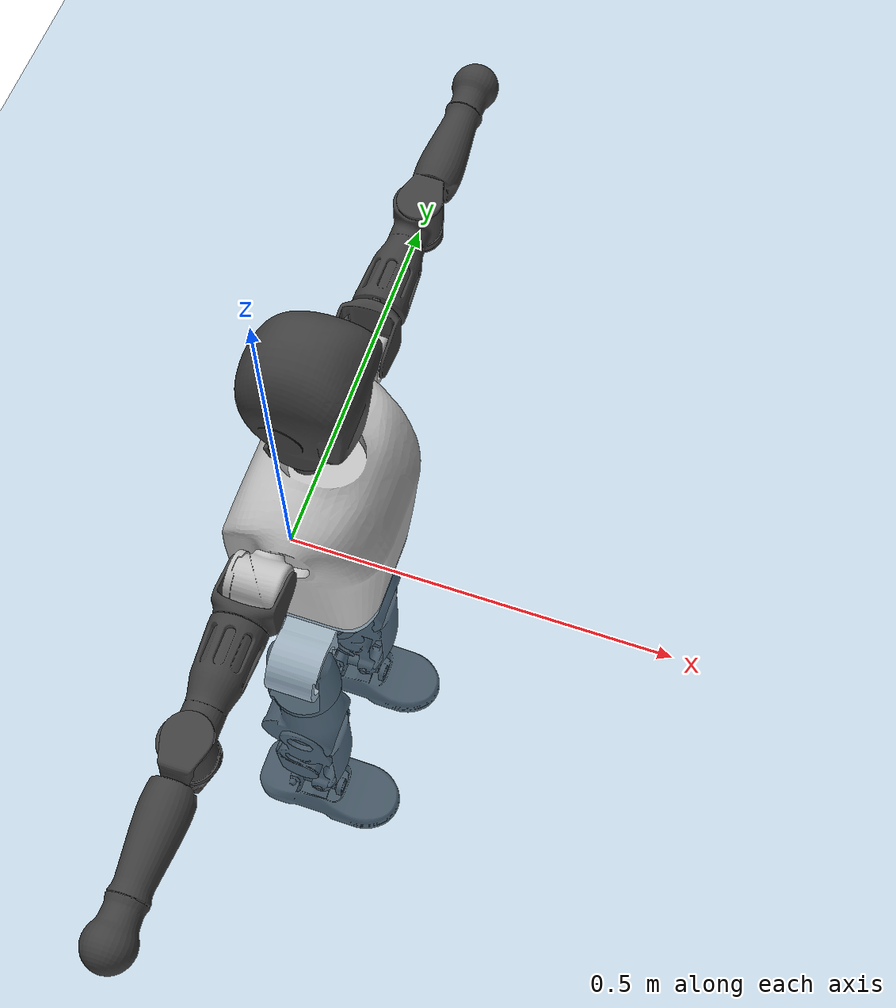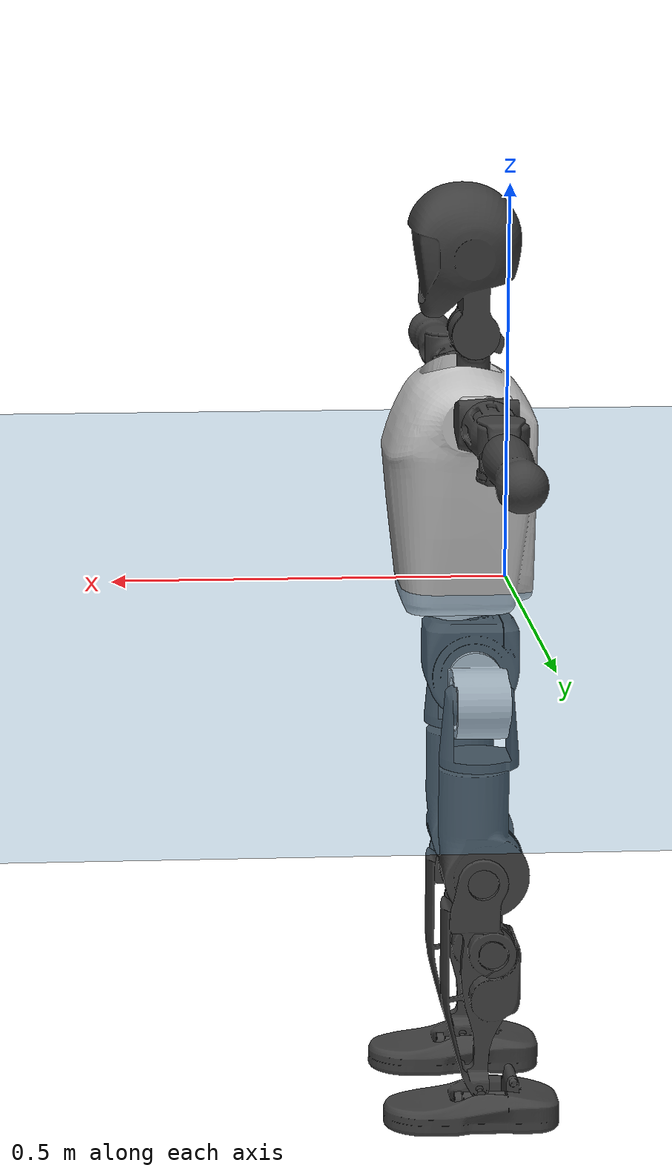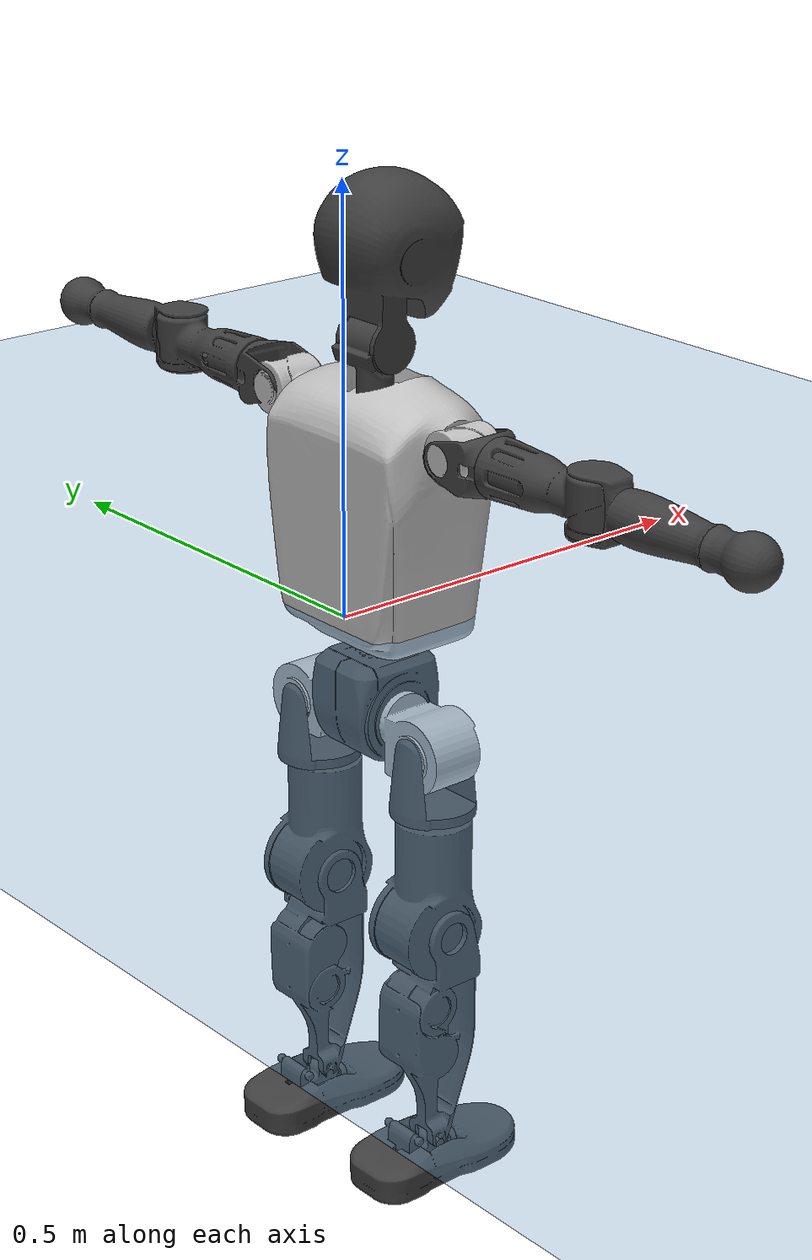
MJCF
<mujoco model="T1">
  <compiler angle="radian" assetdir="assets" balanceinertia="true" inertiafromgeom="false"/>

  <option timestep="0.005" density="1.2" viscosity="2e-05"/>

  <size nkey="1"/>

  <visual>
    <quality shadowsize="8192"/>
    <map shadowclip="0.5"/>
  </visual>

  <default>
    <default class="/">
      <joint armature="0.01" damping="0.01" frictionloss="0.1"/>
      <geom contype="0" conaffinity="0" group="1" solref="-1000 -80"/>
      <site size="0.01 0.005 0.005" group="5"/>
      <general forcelimited="true" biastype="affine" gainprm="25" biasprm="0 -25 -0.6"/>
      <default class="t1">
        <geom rgba="0.25 0.25 0.25 1"/>
        <default class="visual">
          <geom type="mesh" group="2"/>
        </default>
        <default class="collision">
          <geom group="3"/>
        </default>
        <default class="foot">
          <geom size="0.1115 0.05 0.015" type="box" condim="6" group="4" priority="1" solimp="0.015 1 0.015"/>
        </default>
        <default class="reward_collision_sphere">
          <geom group="5" rgba="1 0 0 1"/>
        </default>
      </default>
    </default>
  </default>

  <asset>
    <texture type="skybox" colorspace="auto" name="//unnamed_texture_0" builtin="gradient" rgb1="0.95 0.95 0.95" rgb2="0.95 0.95 0.95" width="100" height="600"/>
    <texture type="2d" colorspace="auto" name="texplane" builtin="checker" rgb1="0.345 0.575 0.748" rgb2="0.345 0.575 0.748" markrgb="1 1 1" width="512" height="512"/>
    <material name="MatPlane" class="/" texture="texplane" texuniform="true" texrepeat="2 2" specular="0.9"/>
    <mesh name="Trunk" class="/" file="Trunk.stl"/>
    <mesh name="H1" class="/" file="H1.stl"/>
    <mesh name="H2" class="/" file="H2.stl"/>
    <mesh name="AL1" class="/" file="AL1.stl"/>
    <mesh name="AL2" class="/" file="AL2.stl"/>
    <mesh name="AL3" class="/" file="AL3.stl"/>
    <mesh name="left_hand_link" class="/" file="left_hand_link.stl"/>
    <mesh name="AR1" class="/" file="AR1.stl"/>
    <mesh name="AR2" class="/" file="AR2.stl"/>
    <mesh name="AR3" class="/" file="AR3.stl"/>
    <mesh name="right_hand_link" class="/" file="right_hand_link.stl"/>
    <mesh name="Waist" class="/" file="Waist.stl"/>
    <mesh name="Hip_Pitch_Left" class="/" file="Hip_Pitch_Left.stl"/>
    <mesh name="Hip_Roll_Left" class="/" file="Hip_Roll_Left.stl"/>
    <mesh name="Hip_Yaw_Left" class="/" file="Hip_Yaw_Left.stl"/>
    <mesh name="Shank_Left" class="/" file="Shank_Left.stl"/>
    <mesh name="Ankle_Cross_Left" class="/" file="Ankle_Cross_Left.stl"/>
    <mesh name="left_foot_link" class="/" file="left_foot_link.stl"/>
    <mesh name="Hip_Pitch_Right" class="/" file="Hip_Pitch_Right.stl"/>
    <mesh name="Hip_Roll_Right" class="/" file="Hip_Roll_Right.stl"/>
    <mesh name="Hip_Yaw_Right" class="/" file="Hip_Yaw_Right.stl"/>
    <mesh name="Shank_Right" class="/" file="Shank_Right.stl"/>
    <mesh name="Ankle_Cross_Right" class="/" file="Ankle_Cross_Right.stl"/>
    <mesh name="right_foot_link" class="/" file="right_foot_link.stl"/>
  </asset>

  <worldbody>
    <geom name="floor" class="/" size="100 100 0.125" type="plane" group="0" material="MatPlane"/>
    <light name="toplight_shadow" class="/" pos="0 0 5" dir="0.0990148 0.0990148 -0.990148" type="directional" ambient="0.04 0.04 0.04" diffuse="0.55 0.55 0.55" specular="0.12 0.12 0.12"/>
    <light name="toplight_fill" class="/" pos="0 0 5" dir="0.0990148 0.0990148 -0.990148" type="directional" castshadow="false" ambient="0.04 0.04 0.04" diffuse="0.3 0.3 0.3" specular="0.08 0.08 0.08"/>
    <body name="trunk" childclass="t1" pos="0.00283361 0.000484612 7.63701e-05" quat="1 4.42845e-05 -5.05329e-05 0.000105504">
      <inertial pos="0.0367505 -0.000992111 0.106131" quat="0.999973 -0.00500092 -0.00470208 0.00243155" mass="8.7883" diaginertia="0.0128363 0.073502 0.0652274"/>
      <joint name="//unnamed_joint_0" type="free" armature="0" damping="0" frictionloss="0"/>
      <geom name="//unnamed_geom_1" class="visual" rgba="0.76 0.76 0.76 1" mesh="Trunk"/>
      <geom name="//unnamed_geom_2" class="collision" size="0.0673948 0.0898597 0.13479" pos="0.040276 0 0.123968" type="box"/>
      <geom name="//unnamed_geom_3" class="reward_collision_sphere" size="0.103339" pos="0.040276 0 0.103307"/>
      <geom name="//unnamed_geom_4" class="reward_collision_sphere" size="0.013479" pos="0.040276 0.084274 0"/>
      <geom name="//unnamed_geom_5" class="reward_collision_sphere" size="0.013479" pos="0.040276 -0.084274 0"/>
      <geom name="//unnamed_geom_6" class="reward_collision_sphere" size="0.013479" pos="0.040276 0.106086 0.185952"/>
      <geom name="//unnamed_geom_7" class="reward_collision_sphere" size="0.013479" pos="0.040276 -0.106086 0.185952"/>
      <site name="imu" pos="-0.00923153 -0.0106071 0.0140257" size="0.00898597"/>
      <camera name="track" pos="0 -1.98292 0" quat="0.707107 0.707107 0 0" mode="trackcom"/>
      <camera name="ego_camera" pos="0.0818945 0 0.433888" quat="-0.5 -0.5 0.5 0.5"/>
      <body name="H1" pos="0.0406933 -0.00186977 0.249744" quat="1 0.000212702 0.00013141 0.000305945">
        <inertial pos="-0.00361584 -0.00146448 0.0568483" quat="0.758775 -0.0158417 0.00476145 0.651143" mass="0.333514" diaginertia="3.27152e-05 0.0002107 0.000176524"/>
        <joint name="AAHead_yaw" pos="0 0 0" axis="0.00819455 0.00664271 0.999944" stiffness="0.00092171" range="-1.55646 1.5969" armature="0.0098875" damping="0.00985482" frictionloss="0.10173"/>
        <geom name="//unnamed_geom_8" class="visual" mesh="H1"/>
        <body name="H2" pos="0.00029661 8.88713e-05 0.064011" quat="0.999999 0.00119029 -0.000487062 0.000308346">
          <inertial pos="0.00397935 -0.000267104 0.101924" quat="0.988418 0.106187 -0.0747505 -0.0785222" mass="0.467473" diaginertia="0.0002677 0.00182478 0.00206874"/>
          <joint name="Head_pitch" pos="0 0 0" axis="1.11842e-05 -1 0.000839663" range="-1.20753 0.350348" armature="0.0101473" damping="0.00506887" frictionloss="0.0894269"/>
          <geom name="//unnamed_geom_9" class="visual" mesh="H2"/>
          <geom name="//unnamed_geom_10" class="collision" size="0.0718878" pos="0.00671267 0 0.113637"/>
          <geom name="//unnamed_geom_11" class="reward_collision_sphere" size="0.0808738" pos="0.0134253 0 0.103307"/>
        </body>
      </body>
      <body name="AL1" pos="0.0423038 0.107687 0.229353" quat="1 0.00024356 0.000543834 -3.86186e-05">
        <inertial pos="-0.00183404 0.0464288 -0.00268393" quat="0.505287 0.49732 -0.502158 0.495173" mass="0.409574" diaginertia="0.00019913 0.00132316 0.000357159"/>
        <joint name="Left_Shoulder_Pitch" pos="0 0 0" axis="0.00948882 0.999903 0.010191" stiffness="0.0133351" range="-3.2609 1.22657" armature="0.0101783" damping="0.0139461" frictionloss="0.0770755"/>
        <geom name="//unnamed_geom_12" class="visual" rgba="0.76 0.76 0.76 1" mesh="AL1"/>
        <body name="AL2" pos="0.000638419 0.0495401 0.00312936" quat="0.999999 -0.000449572 -0.00101692 -0.000132654">
          <inertial pos="0.00172131 0.0369701 0.00248068" quat="0.487995 0.511477 -0.488141 0.51183" mass="0.114929" diaginertia="5.79029e-05 0.000344668 0.000205541"/>
          <joint name="Left_Shoulder_Roll" pos="0 0 0" axis="-0.999983 -0.00288093 -0.00512637" range="-1.51573 1.69169" armature="0.00884287" damping="0.0131564" frictionloss="0.0940966"/>
          <geom name="//unnamed_geom_13" class="visual" mesh="AL2"/>
          <body name="AL3" pos="0.00220588 0.060736 0.000432414" quat="0.999999 -0.000175828 0.000872843 -0.0012769">
            <inertial pos="-0.0011363 0.0848525 0.00261724" quat="0.714475 0.699628 0.00443595 -0.00515658" mass="0.75244" diaginertia="0.00182946 0.0123593 0.000739033"/>
            <joint name="Left_Elbow_Pitch" pos="0 0 0" axis="-0.00435214 -0.999989 -0.00179604" range="-2.25156 2.31874" armature="0.00785623" damping="0" frictionloss="0.0910806"/>
            <geom name="//unnamed_geom_14" class="visual" mesh="AL3"/>
            <geom name="//unnamed_geom_15" class="collision" size="0.0269579 0.0673948" pos="0 0.0495729 0" quat="0.707105 0.707108 0 0" type="cylinder"/>
            <geom name="//unnamed_geom_16" class="reward_collision_sphere" size="0.0323495"/>
            <body name="left_hand_link" pos="0.00284419 0.145886 0.00144983" quat="0.999999 0.000195776 -0.000754575 -0.00113686">
              <inertial pos="0.000937721 0.106239 0.00111334" quat="0.706521 0.707646 -0.00669145 0.00463643" mass="0.231725" diaginertia="0.00113661 0.00789595 0.000249187"/>
              <joint name="Left_Elbow_Yaw" pos="0 0 0" axis="-0.00151488 0.0101459 0.999947" stiffness="0.00607193" range="-2.38986 -0.0559126" armature="0.0103076" damping="0.0263179" frictionloss="0.101947"/>
              <geom name="//unnamed_geom_17" class="visual" mesh="left_hand_link"/>
              <geom name="//unnamed_geom_18" class="collision" size="0.0269579 0.0786273" pos="0 0.12889 0" quat="0.707105 0.707108 0 0" type="cylinder"/>
              <geom name="//unnamed_geom_19" class="reward_collision_sphere" size="0.0449299"/>
              <geom name="//unnamed_geom_20" class="reward_collision_sphere" size="0.0314509" pos="0 0.10906 0"/>
              <geom name="//unnamed_geom_21" class="reward_collision_sphere" size="0.0314509" pos="0 0.213164 0"/>
            </body>
          </body>
        </body>
      </body>
      <body name="AR1" pos="0.0371574 -0.106971 0.225115" quat="0.999999 0.00133485 6.39103e-05 0.000153999">
        <inertial pos="0.0015352 -0.0437352 -0.000373994" quat="0.504393 0.495914 -0.504071 0.495549" mass="0.387948" diaginertia="0.00018195 0.00122538 0.000346072"/>
        <joint name="Right_Shoulder_Pitch" pos="0 0 0" axis="-0.00147663 -0.999991 0.00390913" stiffness="0.0139431" range="-1.24565 3.33332" armature="0.010129" damping="0.00264959" frictionloss="0.0775947"/>
        <geom name="//unnamed_geom_22" class="visual" rgba="0.76 0.76 0.76 1" mesh="AR1"/>
        <body name="AR2" pos="-0.000915719 -0.0431376 -0.00227236" quat="1 0.000286133 9.25341e-05 0.000382484">
          <inertial pos="-0.000296759 -0.034915 -0.00165218" quat="0.513257 0.483573 -0.514154 0.488231" mass="0.120324" diaginertia="5.65833e-05 0.000335653 0.000220725"/>
          <joint name="Right_Shoulder_Roll" pos="0 0 0" axis="-0.999739 0.00602807 -0.022058" range="-1.71265 1.58479" armature="0.00990202" damping="0.0165869" frictionloss="0.0933648"/>
          <geom name="//unnamed_geom_23" class="visual" mesh="AR2"/>
          <body name="AR3" pos="0.00016569 -0.0574559 0.00105484" quat="1 8.10134e-05 -0.000237267 0.000378949">
            <inertial pos="-0.00221125 -0.0831312 0.000220457" quat="0.70957 0.704518 0.012695 -0.00180927" mass="0.745966" diaginertia="0.00177023 0.012327 0.000751246"/>
            <joint name="Right_Elbow_Pitch" pos="0 0 0" axis="-0.0117764 0.999924 -0.00365524" range="-2.27332 2.21065" armature="0.00878855" damping="0.00398751" frictionloss="0.0811915"/>
            <geom name="//unnamed_geom_24" class="visual" mesh="AR3"/>
            <geom name="//unnamed_geom_25" class="collision" size="0.0269579 0.0673948" pos="0 -0.0495729 0" quat="0.707105 0.707108 0 0" type="cylinder"/>
            <geom name="//unnamed_geom_26" class="reward_collision_sphere" size="0.0323495"/>
            <body name="right_hand_link" pos="0.00181522 -0.142965 -0.000617792" quat="1 -3.72562e-05 -0.000301678 0.000114924">
              <inertial pos="-0.00136256 -0.108274 0.00311304" quat="0.705935 0.708276 -0.000189094 0.000856785" mass="0.239398" diaginertia="0.00112505 0.00764 0.000248058"/>
              <joint name="Right_Elbow_Yaw" pos="0 0 0" axis="0.000702973 -0.00201788 0.999998" stiffness="0.0113393" range="0.0565494 2.40812" armature="0.00908978" damping="0" frictionloss="0.0801129"/>
              <geom name="//unnamed_geom_27" class="visual" mesh="right_hand_link"/>
              <geom name="//unnamed_geom_28" class="collision" size="0.0269579 0.0786273" pos="0 -0.12889 0" quat="0.707105 0.707108 0 0" type="cylinder"/>
              <geom name="//unnamed_geom_29" class="reward_collision_sphere" size="0.0449299"/>
              <geom name="//unnamed_geom_30" class="reward_collision_sphere" size="0.0314509" pos="0 -0.10906 0"/>
              <geom name="//unnamed_geom_31" class="reward_collision_sphere" size="0.0314509" pos="0 -0.213164 0"/>
            </body>
          </body>
        </body>
      </body>
      <body name="Waist" pos="0.0411362 -0.00132408 -0.118092" quat="1 -0.000111146 -0.000114533 -8.24133e-05">
        <inertial pos="0.00202941 -0.000537686 0.00830468" quat="0.984537 0.000709064 -0.174532 0.0149691" mass="1.81825" diaginertia="0.000746957 0.00512035 0.00569314"/>
        <joint name="Waist" pos="0 0 0" axis="-0.0153628 0.00151273 0.999881" stiffness="0.00220732" range="-1.62427 1.51386" armature="0.00917816" damping="0.0178492" frictionloss="0.0800262"/>
        <geom name="//unnamed_geom_32" class="visual" mesh="Waist"/>
        <body name="Hip_Pitch_Left" pos="-0.000795067 0.104758 -0.00158208" quat="1 8.50376e-05 -0.000558397 -0.00017514">
          <inertial pos="0.00145706 -0.0101606 -0.0174595" quat="0.975416 0.21873 0.0264797 0.00449802" mass="0.753466" diaginertia="0.000240589 0.00146327 0.00153118"/>
          <joint name="Left_Hip_Pitch" pos="0 0 0" axis="-0.01235 0.99991 0.00519426" stiffness="0.0120253" range="-1.82838 1.56631" armature="0.0101151" damping="0.0211067" frictionloss="0.0901464"/>
          <geom name="//unnamed_geom_33" class="visual" rgba="0.76 0.76 0.76 1" mesh="Hip_Pitch_Left"/>
          <body name="Hip_Roll_Left" pos="0.00217705 -0.00159063 -0.0218348" quat="0.999999 -0.000254296 0.00118959 -8.24736e-05">
            <inertial pos="0.00418852 -0.000996107 -0.0555049" quat="0.708036 -0.00737967 -0.00870402 0.706084" mass="0.264745" diaginertia="0.000229173 0.00142529 0.000590376"/>
            <joint name="Left_Hip_Roll" pos="0 0 0" axis="-0.999924 -0.00040165 -0.0123307" stiffness="0.00606293" range="-1.53034 0.225174" armature="0.00775305" damping="0" frictionloss="0.0809675"/>
            <geom name="//unnamed_geom_34" class="visual" mesh="Hip_Roll_Left"/>
            <geom name="//unnamed_geom_35" class="reward_collision_sphere" size="0.0494229"/>
            <body name="Hip_Yaw_Left" pos="0.00323994 -0.00322199 -0.082543" quat="0.999999 0.000854494 -0.000126688 -0.000753381">
              <inertial pos="-0.00632227 -0.00168709 -0.0937016" quat="0.698623 -0.0348243 -0.0304007 0.713995" mass="1.59256" diaginertia="0.00360867 0.0242054 0.00302676"/>
              <joint name="Left_Hip_Yaw" pos="0 0 0" axis="-0.00809756 0.00128524 -0.999966" range="-0.973324 1.05567" armature="0.00908252" damping="0.00715172" frictionloss="0.101558"/>
              <geom name="//unnamed_geom_36" class="visual" mesh="Hip_Yaw_Left"/>
              <geom name="//unnamed_geom_37" class="collision" size="0.0449299 0.0718878" type="cylinder"/>
              <body name="Shank_Left" pos="-0.00894127 0.00203865 -0.140881" quat="1 -6.56475e-05 -7.96247e-05 3.5208e-06">
                <inertial pos="-0.0055859 0.00141913 -0.127203" quat="0.997225 0.0016961 -0.0308381 0.0677374" mass="1.20473" diaginertia="0.0046933 0.0333183 0.00225112"/>
                <joint name="Left_Knee_Pitch" pos="0 0 0" axis="0.00137221 0.999921 -0.0125254" range="0.00215896 2.39687" armature="0.00770432" damping="0.0135799" frictionloss="0.0980036"/>
                <geom name="//unnamed_geom_38" class="visual" mesh="Shank_Left"/>
                <geom name="//unnamed_geom_39" class="collision" size="0.0449299 0.0673948" pos="0 0 -0.123968" type="cylinder"/>
                <geom name="//unnamed_geom_40" class="reward_collision_sphere" size="0.0584088"/>
                <body name="Ankle_Cross_Left" pos="-0.00269645 -0.0015439 -0.287824" quat="1 -0.00039721 -0.00026396 -1.50137e-05">
                  <inertial pos="-0.00185909 0.000150552 -0.00729854" quat="0.440056 0.549529 0.554512 0.443716" mass="0.0545802" diaginertia="4.20378e-06 2.54747e-05 1.37867e-05"/>
                  <joint name="Left_Ankle_Pitch" pos="0 0 0" axis="-0.00599499 0.999924 -0.0107941" range="-0.870302 0.292904" armature="0.00971733" damping="0.00218512" frictionloss="0.0795284"/>
                  <geom name="//unnamed_geom_41" class="visual" mesh="Ankle_Cross_Left"/>
                  <body name="left_foot_link" pos="0.00128925 -0.00204382 -0.0151021" quat="1 -1.54757e-05 -1.61326e-05 3.53122e-05">
                    <inertial pos="-0.00180747 0.00276749 -0.00943283" quat="-0.00151803 0.62311 -0.000974412 0.782132" mass="0.491803" diaginertia="0.000365985 0.00227109 0.0024625"/>
                    <joint name="Left_Ankle_Roll" pos="0 0 0" axis="-1 0.000843438 0.000328449" range="-0.38486 0.392471" armature="0.00897004" damping="0.0079526" frictionloss="0.0927553"/>
                    <geom name="//unnamed_geom_42" class="visual" mesh="left_foot_link"/>
                    <geom name="left_foot" class="foot" size="0.0984262 0.0452462 0.0124392" pos="0.00671267 0 -0.015496"/>
                    <geom name="//unnamed_geom_44" class="reward_collision_sphere" size="0.0467271" pos="0.00671267 0 -0.015496"/>
                    <geom name="//unnamed_geom_45" class="reward_collision_sphere" size="0.0269579" pos="0.0637703 -0.0228035 -0.015496"/>
                    <geom name="//unnamed_geom_46" class="reward_collision_sphere" size="0.0269579" pos="-0.0469887 -0.0228035 -0.015496"/>
                    <site name="left_foot" class="foot" pos="0.00671267 0 -0.015496" size="0.00898597"/>
                  </body>
                </body>
              </body>
            </body>
          </body>
        </body>
        <body name="Hip_Pitch_Right" pos="-0.00220342 -0.105505 -0.00268782" quat="1 -0.000628263 -0.000331141 0.000565235">
          <inertial pos="0.00100921 0.0077667 -0.0211261" quat="0.972763 -0.231344 0.0122509 -0.00783778" mass="0.731632" diaginertia="0.000240624 0.00143611 0.00151173"/>
          <joint name="Right_Hip_Pitch" pos="0 0 0" axis="0.0096806 -0.999951 -0.00188899" range="-1.58797 1.83461" armature="0.00842614" damping="0.0209049" frictionloss="0.0810824"/>
          <geom name="//unnamed_geom_47" class="visual" rgba="0.76 0.76 0.76 1" mesh="Hip_Pitch_Right"/>
          <body name="Hip_Roll_Right" pos="0.00162558 -0.000293917 -0.0194266" quat="1 -4.98766e-05 -5.44714e-05 0.000492836">
            <inertial pos="9.24471e-05 -0.00326716 -0.0528404" quat="0.707056 -0.0028896 -0.00138661 0.70715" mass="0.269663" diaginertia="0.000228543 0.00136985 0.000600993"/>
            <joint name="Right_Hip_Roll" pos="0 0 0" axis="-0.999958 0.0057388 -0.00711839" range="-0.193847 1.56101" armature="0.00758281" damping="0.00543495" frictionloss="0.0895897"/>
            <geom name="//unnamed_geom_48" class="visual" mesh="Hip_Roll_Right"/>
            <geom name="//unnamed_geom_49" class="reward_collision_sphere" size="0.0494229"/>
            <body name="Hip_Yaw_Right" pos="0.000558789 0.00193582 -0.0873358" quat="1 0.000411028 -0.00010106 -0.000714423">
              <inertial pos="-0.00188326 0.00159844 -0.0951346" quat="0.714559 -0.031633 -0.0393168 0.697753" mass="1.57658" diaginertia="0.00353338 0.0235353 0.0030002"/>
              <joint name="Right_Hip_Yaw" pos="0 0 0" axis="0.00248497 -0.00143232 -0.999996" range="-1.02827 1.01987" armature="0.00919157" damping="0.00563491" frictionloss="0.0892102"/>
              <geom name="//unnamed_geom_50" class="visual" mesh="Hip_Yaw_Right"/>
              <geom name="//unnamed_geom_51" class="collision" size="0.0449299 0.0718878" type="cylinder"/>
              <body name="Shank_Right" pos="-0.00623287 -0.00164784 -0.135832" quat="1 -4.73279e-05 -0.000163881 4.01589e-05">
                <inertial pos="-0.00528015 0.000283923 -0.129298" quat="0.999228 0.00526679 -0.0320252 -0.0221449" mass="1.33352" diaginertia="0.0046142 0.0321299 0.00223068"/>
                <joint name="Right_Knee_Pitch" pos="0 0 0" axis="-0.00673171 -0.999884 -0.0136847" range="-2.3948 -0.011743" armature="0.00913535" damping="0.0152485" frictionloss="0.0795445"/>
                <geom name="//unnamed_geom_52" class="visual" mesh="Shank_Right"/>
                <geom name="//unnamed_geom_53" class="collision" size="0.0449299 0.0673948" pos="0 0 -0.123968" type="cylinder"/>
                <geom name="//unnamed_geom_54" class="reward_collision_sphere" size="0.0584088"/>
                <body name="Ankle_Cross_Right" pos="-0.00021097 -0.000709229 -0.287746" quat="1 -0.000414452 -5.02231e-05 -6.034e-06">
                  <inertial pos="-0.00335063 -0.00259513 -0.00737908" quat="0.441128 0.55837 0.546858 0.441106" mass="0.0525295" diaginertia="3.93201e-06 2.34597e-05 1.30673e-05"/>
                  <joint name="Right_Ankle_Pitch" pos="0 0 0" axis="0.00861601 -0.999921 0.0091357" range="-0.298634 0.871397" armature="0.0102964" damping="0.00308856" frictionloss="0.0921927"/>
                  <geom name="//unnamed_geom_55" class="visual" mesh="Ankle_Cross_Right"/>
                  <body name="right_foot_link" pos="0.00182102 -0.000878314 -0.00999685" quat="1 -1.52904e-05 -6.91357e-05 -4.41538e-05">
                    <inertial pos="-0.000431231 0.0014682 -0.00714236" quat="0.0119693 0.62541 -0.00366248 0.780196" mass="0.497325" diaginertia="0.00037975 0.00232984 0.00260558"/>
                    <joint name="Right_Ankle_Roll" pos="0 0 0" axis="-1 -0.000691696 -0.000279418" range="-0.428032 0.383415" armature="0.00907669" damping="0.0128779" frictionloss="0.0771167"/>
                    <geom name="//unnamed_geom_56" class="visual" mesh="right_foot_link"/>
                    <geom name="right_foot" class="foot" size="0.113484 0.0472069 0.0146257" pos="0.00671267 0 -0.015496"/>
                    <geom name="//unnamed_geom_58" class="reward_collision_sphere" size="0.0359439"/>
                    <geom name="//unnamed_geom_59" class="reward_collision_sphere" size="0.0269579" pos="0.00671267 0 -0.015496"/>
                    <geom name="//unnamed_geom_60" class="reward_collision_sphere" size="0.0269579" pos="0.0637703 0.0228035 -0.015496"/>
                    <geom name="//unnamed_geom_61" class="reward_collision_sphere" size="0.0269579" pos="-0.0469887 0.0228035 -0.015496"/>
                    <site name="right_foot" class="foot" pos="0.00671267 0 -0.015496" size="0.00898597"/>
                  </body>
                </body>
              </body>
            </body>
          </body>
        </body>
      </body>
    </body>
  </worldbody>

  <contact>
    <pair class="/" geom1="floor" geom2="left_foot" name="//unnamed_contact_0"/>
    <pair class="/" geom1="floor" geom2="right_foot" name="//unnamed_contact_1"/>
  </contact>

  <actuator>
    <general name="AAHead_yaw" class="/" joint="AAHead_yaw" forcerange="-6.9594 6.9594" gainprm="23.9864" biasprm="0 -23.9864 -0.494907"/>
    <general name="Head_pitch" class="/" joint="Head_pitch" forcerange="-6.27604 6.27604" gainprm="23.9864" biasprm="0 -23.9864 -0.494907"/>
    <general name="Left_Shoulder_Pitch" class="/" joint="Left_Shoulder_Pitch" forcerange="-15.4442 15.4442" gainprm="23.9864" biasprm="0 -23.9864 -0.494907"/>
    <general name="Left_Shoulder_Roll" class="/" joint="Left_Shoulder_Roll" forcerange="-16.6389 16.6389" gainprm="23.9864" biasprm="0 -23.9864 -0.494907"/>
    <general name="Left_Elbow_Pitch" class="/" joint="Left_Elbow_Pitch" forcerange="-17.8902 17.8902" gainprm="23.9864" biasprm="0 -23.9864 -0.494907"/>
    <general name="Left_Elbow_Yaw" class="/" joint="Left_Elbow_Yaw" forcerange="-17.916 17.916" gainprm="23.9864" biasprm="0 -23.9864 -0.494907"/>
    <general name="Right_Shoulder_Pitch" class="/" joint="Right_Shoulder_Pitch" forcerange="-14.938 14.938" gainprm="23.9864" biasprm="0 -23.9864 -0.494907"/>
    <general name="Right_Shoulder_Roll" class="/" joint="Right_Shoulder_Roll" forcerange="-15.8828 15.8828" gainprm="23.9864" biasprm="0 -23.9864 -0.494907"/>
    <general name="Right_Elbow_Pitch" class="/" joint="Right_Elbow_Pitch" forcerange="-16.1883 16.1883" gainprm="23.9864" biasprm="0 -23.9864 -0.494907"/>
    <general name="Right_Elbow_Yaw" class="/" joint="Right_Elbow_Yaw" forcerange="-16.4128 16.4128" gainprm="23.9864" biasprm="0 -23.9864 -0.494907"/>
    <general name="Waist" class="/" joint="Waist" forcerange="-27.445 27.445" gainprm="23.9864" biasprm="0 -23.9864 -0.494907"/>
    <general name="Left_Hip_Pitch" class="/" joint="Left_Hip_Pitch" forcerange="-40.5527 40.5527" gainprm="23.9864" biasprm="0 -23.9864 -0.494907"/>
    <general name="Left_Hip_Roll" class="/" joint="Left_Hip_Roll" forcerange="-26.6879 26.6879" gainprm="23.9864" biasprm="0 -23.9864 -0.494907"/>
    <general name="Left_Hip_Yaw" class="/" joint="Left_Hip_Yaw" forcerange="-24.1832 24.1832" gainprm="23.9864" biasprm="0 -23.9864 -0.494907"/>
    <general name="Left_Knee_Pitch" class="/" joint="Left_Knee_Pitch" forcerange="-58.3385 58.3385" gainprm="23.9864" biasprm="0 -23.9864 -0.494907"/>
    <general name="Left_Ankle_Pitch" class="/" joint="Left_Ankle_Pitch" forcerange="-16.2566 16.2566" gainprm="23.9864" biasprm="0 -23.9864 -0.494907"/>
    <general name="Left_Ankle_Roll" class="/" joint="Left_Ankle_Roll" forcerange="-13.8829 13.8829" gainprm="23.9864" biasprm="0 -23.9864 -0.494907"/>
    <general name="Right_Hip_Pitch" class="/" joint="Right_Hip_Pitch" forcerange="-42.0486 42.0486" gainprm="23.9864" biasprm="0 -23.9864 -0.494907"/>
    <general name="Right_Hip_Roll" class="/" joint="Right_Hip_Roll" forcerange="-27.3942 27.3942" gainprm="23.9864" biasprm="0 -23.9864 -0.494907"/>
    <general name="Right_Hip_Yaw" class="/" joint="Right_Hip_Yaw" forcerange="-25.5355 25.5355" gainprm="23.9864" biasprm="0 -23.9864 -0.494907"/>
    <general name="Right_Knee_Pitch" class="/" joint="Right_Knee_Pitch" forcerange="-48.4528 48.4528" gainprm="23.9864" biasprm="0 -23.9864 -0.494907"/>
    <general name="Right_Ankle_Pitch" class="/" joint="Right_Ankle_Pitch" forcerange="-16.4109 16.4109" gainprm="23.9864" biasprm="0 -23.9864 -0.494907"/>
    <general name="Right_Ankle_Roll" class="/" joint="Right_Ankle_Roll" forcerange="-14.1848 14.1848" gainprm="23.9864" biasprm="0 -23.9864 -0.494907"/>
  </actuator>

  <sensor>
    <gyro site="imu" name="imu_angular_velocity"/>
    <velocimeter site="imu" name="imu_linear_velocity"/>
    <framelinvel objtype="site" objname="left_foot" name="left_foot_global_linear_velocity"/>
    <framelinvel objtype="site" objname="right_foot" name="right_foot_global_linear_velocity"/>
  </sensor>

  <keyframe>
    <key name="home" qpos="0 0 0.6385 1 0 0 0 0 0 0 1.4 0 -0.4 0 -1.4 0 0.4 0 -0.4 0 0 0.8 -0.4 0 0.4 0 0 -0.8 0.4 0"/>
  </keyframe>
</mujoco>
